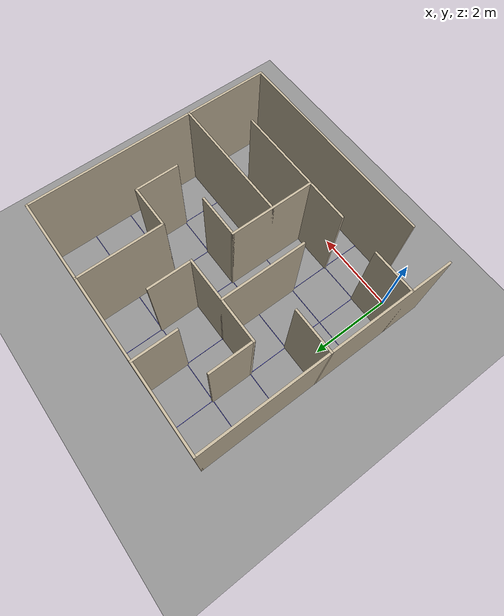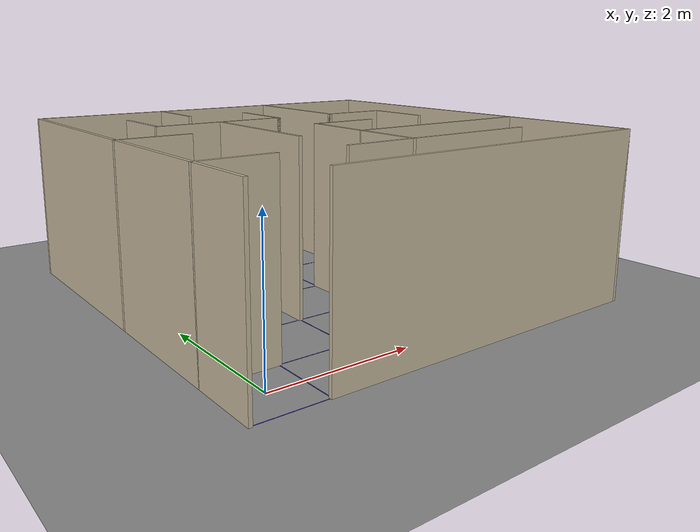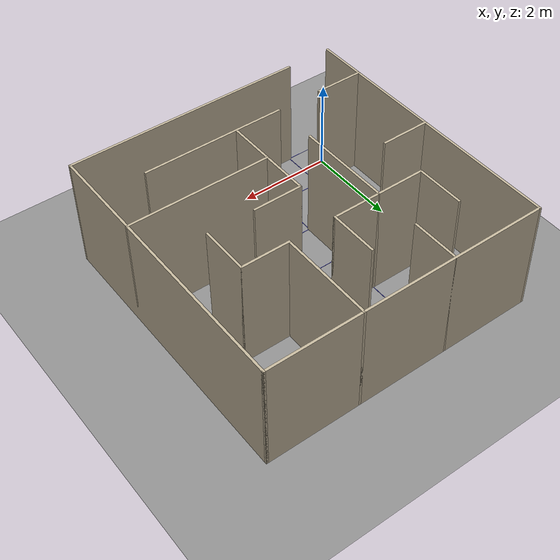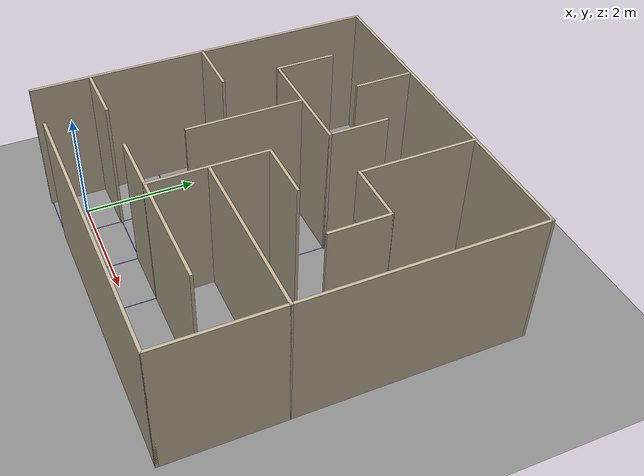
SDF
<sdf version="1.9">
 <world name="practice_6x6">
  <physics name="1ms" type="ignore">
   <max_step_size>0.001</max_step_size>
   <real_time_factor>1.0</real_time_factor>
  </physics>
  <plugin filename="gz-sim-physics-system" name="gz::sim::systems::Physics"/>
  <plugin filename="gz-sim-sensors-system" name="gz::sim::systems::Sensors">
   <render_engine>ogre2</render_engine>
  </plugin>
  <plugin filename="gz-sim-user-commands-system" name="gz::sim::systems::UserCommands"/>
  <plugin filename="gz-sim-scene-broadcaster-system" name="gz::sim::systems::SceneBroadcaster"/>
  <plugin filename="gz-sim-imu-system" name="gz::sim::systems::Imu"/>
  <plugin filename="gz-sim-navsat-system" name="gz::sim::systems::NavSat"/>
  <scene><ambient>0.8 0.8 0.8</ambient><background>0.8 0.8 0.8</background></scene>
  <spherical_coordinates>
   <latitude_deg>-35.363262</latitude_deg>
   <longitude_deg>149.165237</longitude_deg>
   <elevation>584</elevation>
   <heading_deg>0</heading_deg>
   <surface_model>EARTH_WGS84</surface_model>
  </spherical_coordinates>
  <light type="directional" name="sun">
   <cast_shadows>false</cast_shadows>
   <pose>0 0 10 0 0 0</pose>
   <diffuse>0.9 0.9 0.9 1</diffuse>
   <direction>-0.3 0.2 -0.9</direction>
  </light>
  <model name="ground">
   <static>true</static>
   <link name="link">
    <collision name="c"><geometry><plane><normal>0 0 1</normal><size>60 60</size></plane></geometry></collision>
    <visual name="v">
     <geometry><plane><normal>0 0 1</normal><size>60 60</size></plane></geometry>
     <material><ambient>0.55 0.55 0.55 1</ambient><diffuse>0.55 0.55 0.55 1</diffuse></material>
    </visual>
   </link>
  </model>
  <model name="maze">
   <static>true</static>
   <link name="h0_0">
    <pose>2.500 5.500 1.220 0 0 0</pose>
    <collision name="c"><geometry><box><size>6.05 0.05 2.44</size></box></geometry></collision>
    <visual name="v">
     <geometry><box><size>6.05 0.05 2.44</size></box></geometry>
     <material><ambient>0.75 0.7 0.6 1</ambient><diffuse>0.75 0.7 0.6 1</diffuse></material>
    </visual>
   </link>
   <link name="h2_1">
    <pose>1.500 3.500 1.220 0 0 0</pose>
    <collision name="c"><geometry><box><size>2.05 0.05 2.44</size></box></geometry></collision>
    <visual name="v">
     <geometry><box><size>2.05 0.05 2.44</size></box></geometry>
     <material><ambient>0.75 0.7 0.6 1</ambient><diffuse>0.75 0.7 0.6 1</diffuse></material>
    </visual>
   </link>
   <link name="h2_4">
    <pose>4.000 3.500 1.220 0 0 0</pose>
    <collision name="c"><geometry><box><size>1.05 0.05 2.44</size></box></geometry></collision>
    <visual name="v">
     <geometry><box><size>1.05 0.05 2.44</size></box></geometry>
     <material><ambient>0.75 0.7 0.6 1</ambient><diffuse>0.75 0.7 0.6 1</diffuse></material>
    </visual>
   </link>
   <link name="h3_0">
    <pose>0.000 2.500 1.220 0 0 0</pose>
    <collision name="c"><geometry><box><size>1.05 0.05 2.44</size></box></geometry></collision>
    <visual name="v">
     <geometry><box><size>1.05 0.05 2.44</size></box></geometry>
     <material><ambient>0.75 0.7 0.6 1</ambient><diffuse>0.75 0.7 0.6 1</diffuse></material>
    </visual>
   </link>
   <link name="h3_3">
    <pose>3.000 2.500 1.220 0 0 0</pose>
    <collision name="c"><geometry><box><size>1.05 0.05 2.44</size></box></geometry></collision>
    <visual name="v">
     <geometry><box><size>1.05 0.05 2.44</size></box></geometry>
     <material><ambient>0.75 0.7 0.6 1</ambient><diffuse>0.75 0.7 0.6 1</diffuse></material>
    </visual>
   </link>
   <link name="h4_3">
    <pose>4.000 1.500 1.220 0 0 0</pose>
    <collision name="c"><geometry><box><size>3.05 0.05 2.44</size></box></geometry></collision>
    <visual name="v">
     <geometry><box><size>3.05 0.05 2.44</size></box></geometry>
     <material><ambient>0.75 0.7 0.6 1</ambient><diffuse>0.75 0.7 0.6 1</diffuse></material>
    </visual>
   </link>
   <link name="h5_0">
    <pose>0.000 0.500 1.220 0 0 0</pose>
    <collision name="c"><geometry><box><size>1.05 0.05 2.44</size></box></geometry></collision>
    <visual name="v">
     <geometry><box><size>1.05 0.05 2.44</size></box></geometry>
     <material><ambient>0.75 0.7 0.6 1</ambient><diffuse>0.75 0.7 0.6 1</diffuse></material>
    </visual>
   </link>
   <link name="h5_2">
    <pose>3.000 0.500 1.220 0 0 0</pose>
    <collision name="c"><geometry><box><size>3.05 0.05 2.44</size></box></geometry></collision>
    <visual name="v">
     <geometry><box><size>3.05 0.05 2.44</size></box></geometry>
     <material><ambient>0.75 0.7 0.6 1</ambient><diffuse>0.75 0.7 0.6 1</diffuse></material>
    </visual>
   </link>
   <link name="h6_1">
    <pose>3.000 -0.500 1.220 0 0 0</pose>
    <collision name="c"><geometry><box><size>5.05 0.05 2.44</size></box></geometry></collision>
    <visual name="v">
     <geometry><box><size>5.05 0.05 2.44</size></box></geometry>
     <material><ambient>0.75 0.7 0.6 1</ambient><diffuse>0.75 0.7 0.6 1</diffuse></material>
    </visual>
   </link>
   <link name="v0_0">
    <pose>-0.500 2.500 1.220 0 0 0</pose>
    <collision name="c"><geometry><box><size>0.05 6.05 2.44</size></box></geometry></collision>
    <visual name="v">
     <geometry><box><size>0.05 6.05 2.44</size></box></geometry>
     <material><ambient>0.75 0.7 0.6 1</ambient><diffuse>0.75 0.7 0.6 1</diffuse></material>
    </visual>
   </link>
   <link name="v1_1">
    <pose>0.500 4.000 1.220 0 0 0</pose>
    <collision name="c"><geometry><box><size>0.05 1.05 2.44</size></box></geometry></collision>
    <visual name="v">
     <geometry><box><size>0.05 1.05 2.44</size></box></geometry>
     <material><ambient>0.75 0.7 0.6 1</ambient><diffuse>0.75 0.7 0.6 1</diffuse></material>
    </visual>
   </link>
   <link name="v2_0">
    <pose>1.500 5.000 1.220 0 0 0</pose>
    <collision name="c"><geometry><box><size>0.05 1.05 2.44</size></box></geometry></collision>
    <visual name="v">
     <geometry><box><size>0.05 1.05 2.44</size></box></geometry>
     <material><ambient>0.75 0.7 0.6 1</ambient><diffuse>0.75 0.7 0.6 1</diffuse></material>
    </visual>
   </link>
   <link name="v2_2">
    <pose>1.500 2.500 1.220 0 0 0</pose>
    <collision name="c"><geometry><box><size>0.05 2.05 2.44</size></box></geometry></collision>
    <visual name="v">
     <geometry><box><size>0.05 2.05 2.44</size></box></geometry>
     <material><ambient>0.75 0.7 0.6 1</ambient><diffuse>0.75 0.7 0.6 1</diffuse></material>
    </visual>
   </link>
   <link name="v3_1">
    <pose>2.500 4.000 1.220 0 0 0</pose>
    <collision name="c"><geometry><box><size>0.05 1.05 2.44</size></box></geometry></collision>
    <visual name="v">
     <geometry><box><size>0.05 1.05 2.44</size></box></geometry>
     <material><ambient>0.75 0.7 0.6 1</ambient><diffuse>0.75 0.7 0.6 1</diffuse></material>
    </visual>
   </link>
   <link name="v3_3">
    <pose>2.500 1.500 1.220 0 0 0</pose>
    <collision name="c"><geometry><box><size>0.05 2.05 2.44</size></box></geometry></collision>
    <visual name="v">
     <geometry><box><size>0.05 2.05 2.44</size></box></geometry>
     <material><ambient>0.75 0.7 0.6 1</ambient><diffuse>0.75 0.7 0.6 1</diffuse></material>
    </visual>
   </link>
   <link name="v4_0">
    <pose>3.500 4.500 1.220 0 0 0</pose>
    <collision name="c"><geometry><box><size>0.05 2.05 2.44</size></box></geometry></collision>
    <visual name="v">
     <geometry><box><size>0.05 2.05 2.44</size></box></geometry>
     <material><ambient>0.75 0.7 0.6 1</ambient><diffuse>0.75 0.7 0.6 1</diffuse></material>
    </visual>
   </link>
   <link name="v5_2">
    <pose>4.500 3.000 1.220 0 0 0</pose>
    <collision name="c"><geometry><box><size>0.05 1.05 2.44</size></box></geometry></collision>
    <visual name="v">
     <geometry><box><size>0.05 1.05 2.44</size></box></geometry>
     <material><ambient>0.75 0.7 0.6 1</ambient><diffuse>0.75 0.7 0.6 1</diffuse></material>
    </visual>
   </link>
   <link name="v6_0">
    <pose>5.500 2.500 1.220 0 0 0</pose>
    <collision name="c"><geometry><box><size>0.05 6.05 2.44</size></box></geometry></collision>
    <visual name="v">
     <geometry><box><size>0.05 6.05 2.44</size></box></geometry>
     <material><ambient>0.75 0.7 0.6 1</ambient><diffuse>0.75 0.7 0.6 1</diffuse></material>
    </visual>
   </link>
   <link name="gh0">
    <pose>2.500 5.500 0.001 0 0 0</pose>
    <visual name="v">
     <geometry><box><size>6.0 0.01 0.002</size></box></geometry>
     <material><ambient>0.2 0.2 0.8 1</ambient><diffuse>0.2 0.2 0.8 1</diffuse></material>
    </visual>
   </link>
   <link name="gh1">
    <pose>2.500 4.500 0.001 0 0 0</pose>
    <visual name="v">
     <geometry><box><size>6.0 0.01 0.002</size></box></geometry>
     <material><ambient>0.2 0.2 0.8 1</ambient><diffuse>0.2 0.2 0.8 1</diffuse></material>
    </visual>
   </link>
   <link name="gh2">
    <pose>2.500 3.500 0.001 0 0 0</pose>
    <visual name="v">
     <geometry><box><size>6.0 0.01 0.002</size></box></geometry>
     <material><ambient>0.2 0.2 0.8 1</ambient><diffuse>0.2 0.2 0.8 1</diffuse></material>
    </visual>
   </link>
   <link name="gh3">
    <pose>2.500 2.500 0.001 0 0 0</pose>
    <visual name="v">
     <geometry><box><size>6.0 0.01 0.002</size></box></geometry>
     <material><ambient>0.2 0.2 0.8 1</ambient><diffuse>0.2 0.2 0.8 1</diffuse></material>
    </visual>
   </link>
   <link name="gh4">
    <pose>2.500 1.500 0.001 0 0 0</pose>
    <visual name="v">
     <geometry><box><size>6.0 0.01 0.002</size></box></geometry>
     <material><ambient>0.2 0.2 0.8 1</ambient><diffuse>0.2 0.2 0.8 1</diffuse></material>
    </visual>
   </link>
   <link name="gh5">
    <pose>2.500 0.500 0.001 0 0 0</pose>
    <visual name="v">
     <geometry><box><size>6.0 0.01 0.002</size></box></geometry>
     <material><ambient>0.2 0.2 0.8 1</ambient><diffuse>0.2 0.2 0.8 1</diffuse></material>
    </visual>
   </link>
   <link name="gh6">
    <pose>2.500 -0.500 0.001 0 0 0</pose>
    <visual name="v">
     <geometry><box><size>6.0 0.01 0.002</size></box></geometry>
     <material><ambient>0.2 0.2 0.8 1</ambient><diffuse>0.2 0.2 0.8 1</diffuse></material>
    </visual>
   </link>
   <link name="gv0">
    <pose>-0.500 2.500 0.001 0 0 0</pose>
    <visual name="v">
     <geometry><box><size>0.01 6.0 0.002</size></box></geometry>
     <material><ambient>0.2 0.2 0.8 1</ambient><diffuse>0.2 0.2 0.8 1</diffuse></material>
    </visual>
   </link>
   <link name="gv1">
    <pose>0.500 2.500 0.001 0 0 0</pose>
    <visual name="v">
     <geometry><box><size>0.01 6.0 0.002</size></box></geometry>
     <material><ambient>0.2 0.2 0.8 1</ambient><diffuse>0.2 0.2 0.8 1</diffuse></material>
    </visual>
   </link>
   <link name="gv2">
    <pose>1.500 2.500 0.001 0 0 0</pose>
    <visual name="v">
     <geometry><box><size>0.01 6.0 0.002</size></box></geometry>
     <material><ambient>0.2 0.2 0.8 1</ambient><diffuse>0.2 0.2 0.8 1</diffuse></material>
    </visual>
   </link>
   <link name="gv3">
    <pose>2.500 2.500 0.001 0 0 0</pose>
    <visual name="v">
     <geometry><box><size>0.01 6.0 0.002</size></box></geometry>
     <material><ambient>0.2 0.2 0.8 1</ambient><diffuse>0.2 0.2 0.8 1</diffuse></material>
    </visual>
   </link>
   <link name="gv4">
    <pose>3.500 2.500 0.001 0 0 0</pose>
    <visual name="v">
     <geometry><box><size>0.01 6.0 0.002</size></box></geometry>
     <material><ambient>0.2 0.2 0.8 1</ambient><diffuse>0.2 0.2 0.8 1</diffuse></material>
    </visual>
   </link>
   <link name="gv5">
    <pose>4.500 2.500 0.001 0 0 0</pose>
    <visual name="v">
     <geometry><box><size>0.01 6.0 0.002</size></box></geometry>
     <material><ambient>0.2 0.2 0.8 1</ambient><diffuse>0.2 0.2 0.8 1</diffuse></material>
    </visual>
   </link>
   <link name="gv6">
    <pose>5.500 2.500 0.001 0 0 0</pose>
    <visual name="v">
     <geometry><box><size>0.01 6.0 0.002</size></box></geometry>
     <material><ambient>0.2 0.2 0.8 1</ambient><diffuse>0.2 0.2 0.8 1</diffuse></material>
    </visual>
   </link>
  </model>
 </world>
</sdf>
